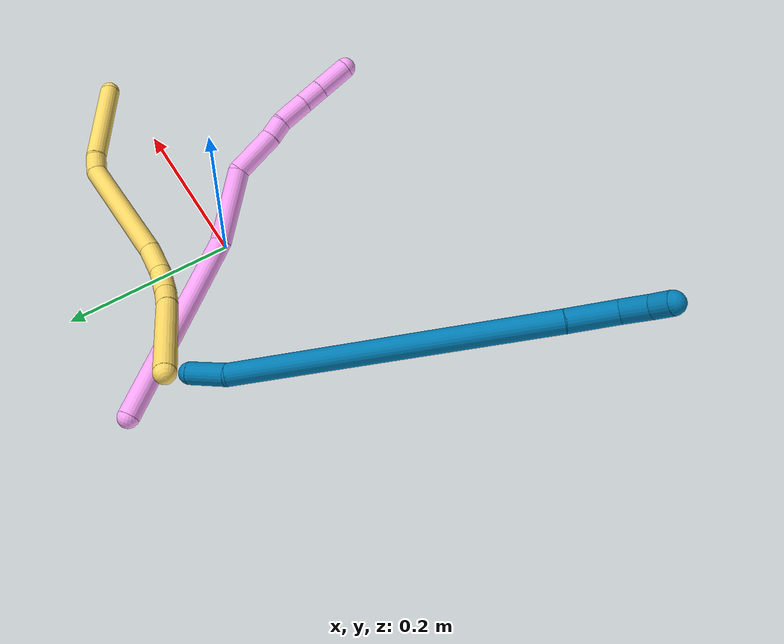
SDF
<sdf version="1.7">
 <world name="default">
  <model name="photoneo_s_sensor">
   <static>1</static>
   <pose>0 0 2 1.57079 1.57079 3.14159</pose>
   <link name="link">
    <inertial><mass>0.1</mass></inertial>
    <sensor name="sensor" type="depth">
     <update_rate>30</update_rate>
     <camera>
      <horizontal_fov>1.22</horizontal_fov>
      <image><width>1920</width><height>1200</height><format>B8G8R8</format></image>
      <clip><near>0.1</near><far>2</far></clip>
      <depth_camera><output>points</output></depth_camera>
     </camera>
     <plugin name="camera_plugin" filename="libgazebo_ros_depth_camera.so">
      <baseline>0.2</baseline>
      <alwaysOn>1</alwaysOn>
      <updateRate>0.0</updateRate>
      <cameraName>camera_ir</cameraName>
      <imageTopicName>/camera/color/image_raw</imageTopicName>
      <cameraInfoTopicName>/camera/color/camera_info</cameraInfoTopicName>
      <depthImageTopicName>/camera/depth/image_raw</depthImageTopicName>
      <depthImageCameraInfoTopicName>/camera/depth/camera_info</depthImageCameraInfoTopicName>
      <pointCloudTopicName>/camera/depth/points</pointCloudTopicName>
      <frameName>fr_optical</frameName>
      <pointCloudCutoff>0.1</pointCloudCutoff>
      <pointCloudCutoffMax>2.0</pointCloudCutoffMax>
      <distortionK1>0</distortionK1>
      <distortionK2>0</distortionK2>
      <distortionK3>0</distortionK3>
      <distortionT1>0</distortionT1>
      <distortionT2>0</distortionT2>
      <CxPrime>0</CxPrime>
      <Cx>0</Cx>
      <Cy>0</Cy>
      <focalLength>0</focalLength>
      <hackBaseline>0</hackBaseline>
     </plugin>
    </sensor>
   </link>
  </model>
  <model name="bin">
   <static>1</static>
   <link name="bottom">
    <collision name="collision-bottom">
     <pose>0 0 -0.01 0 -0 0</pose>
     <geometry><box><size>0.8 0.6 0.02</size></box></geometry>
     <surface>
      <friction><ode><mu>100</mu><mu2>100</mu2></ode></friction>
      <contact><collide_bitmask>65535</collide_bitmask></contact>
     </surface>
    </collision>
   </link>
   <link name="west_wall">
    <collision name="collision-west_wall">
     <pose>-0.41 0 0.1 0 -0 0</pose>
     <geometry><box><size>0.02 0.6 0.2</size></box></geometry>
     <surface>
      <friction><ode><mu>100</mu><mu2>100</mu2></ode></friction>
      <contact><collide_bitmask>65535</collide_bitmask></contact>
     </surface>
    </collision>
   </link>
   <link name="east_wall">
    <collision name="collision-east_wall">
     <pose>0.41 0 0.1 0 -0 0</pose>
     <geometry><box><size>0.02 0.6 0.2</size></box></geometry>
     <surface>
      <friction><ode><mu>100</mu><mu2>100</mu2></ode></friction>
      <contact><collide_bitmask>65535</collide_bitmask></contact>
     </surface>
    </collision>
   </link>
   <link name="south_wall">
    <collision name="collision-south_wall">
     <pose>0 -0.31 0.1 0 -0 0</pose>
     <geometry><box><size>0.8 0.02 0.2</size></box></geometry>
     <surface>
      <friction><ode><mu>100</mu><mu2>100</mu2></ode></friction>
      <contact><collide_bitmask>65535</collide_bitmask></contact>
     </surface>
    </collision>
   </link>
   <link name="north_wall">
    <collision name="collision-north_wall">
     <pose>0 0.31 0.1 0 -0 0</pose>
     <geometry><box><size>0.8 0.02 0.2</size></box></geometry>
     <surface>
      <friction><ode><mu>100</mu><mu2>100</mu2></ode></friction>
      <contact><collide_bitmask>65535</collide_bitmask></contact>
     </surface>
    </collision>
   </link>
  </model>
  <model name="4">
   <static>0</static>
   <link name="4">
    <collision name="collision-cylinder-e_1_1_4">
     <pose>0.027207 -0.07996 -0.07725 2.33896 0.239992 0.553694</pose>
     <geometry><cylinder><radius>0.0125</radius><length>0.228923</length></cylinder></geometry>
     <surface>
      <friction><ode><mu>1.16</mu><mu2>1.16</mu2><slip1>0</slip1><slip2>0</slip2></ode></friction>
      <contact><ode><kp>1e+06</kp><kd>1</kd><max_vel>0</max_vel><min_depth>0.001</min_depth></ode></contact>
     </surface>
    </collision>
    <visual name="visual-cylinder-e_1_1_4">
     <pose>0.027207 -0.07996 -0.07725 2.33896 0.239992 0.553694</pose>
     <geometry><cylinder><radius>0.0125</radius><length>0.228923</length></cylinder></geometry>
     <material><ambient>1 0.65098 0.996078 1</ambient></material>
    </visual>
    <collision name="collision-cylinder-e_2_4_5">
     <pose>0.054866 -0.182045 -0.192675 2.61633 0.010249 0.038118</pose>
     <geometry><cylinder><radius>0.0125</radius><length>0.088249</length></cylinder></geometry>
     <surface>
      <friction><ode><mu>1.16</mu><mu2>1.16</mu2><slip1>0</slip1><slip2>0</slip2></ode></friction>
      <contact><ode><kp>1e+06</kp><kd>1</kd><max_vel>0</max_vel><min_depth>0.001</min_depth></ode></contact>
     </surface>
    </collision>
    <visual name="visual-cylinder-e_2_4_5">
     <pose>0.054866 -0.182045 -0.192675 2.61633 0.010249 0.038118</pose>
     <geometry><cylinder><radius>0.0125</radius><length>0.088249</length></cylinder></geometry>
     <material><ambient>1 0.65098 0.996078 1</ambient></material>
    </visual>
    <collision name="collision-cylinder-e_3_5_6">
     <pose>0.069196 -0.216458 -0.252445 2.62424 0.509358 1.55452</pose>
     <geometry><cylinder><radius>0.0125</radius><length>0.05692</length></cylinder></geometry>
     <surface>
      <friction><ode><mu>1.16</mu><mu2>1.16</mu2><slip1>0</slip1><slip2>0</slip2></ode></friction>
      <contact><ode><kp>1e+06</kp><kd>1</kd><max_vel>0</max_vel><min_depth>0.001</min_depth></ode></contact>
     </surface>
    </collision>
    <visual name="visual-cylinder-e_3_5_6">
     <pose>0.069196 -0.216458 -0.252445 2.62424 0.509358 1.55452</pose>
     <geometry><cylinder><radius>0.0125</radius><length>0.05692</length></cylinder></geometry>
     <material><ambient>1 0.65098 0.996078 1</ambient></material>
    </visual>
    <collision name="collision-cylinder-e_4_6_7">
     <pose>0.086972 -0.233566 -0.283344 2.66375 0.356252 1.27302</pose>
     <geometry><cylinder><radius>0.0125</radius><length>0.022359</length></cylinder></geometry>
     <surface>
      <friction><ode><mu>1.16</mu><mu2>1.16</mu2><slip1>0</slip1><slip2>0</slip2></ode></friction>
      <contact><ode><kp>1e+06</kp><kd>1</kd><max_vel>0</max_vel><min_depth>0.001</min_depth></ode></contact>
     </surface>
    </collision>
    <visual name="visual-cylinder-e_4_6_7">
     <pose>0.086972 -0.233566 -0.283344 2.66375 0.356252 1.27302</pose>
     <geometry><cylinder><radius>0.0125</radius><length>0.022359</length></cylinder></geometry>
     <material><ambient>1 0.65098 0.996078 1</ambient></material>
    </visual>
    <collision name="collision-cylinder-e_5_7_8">
     <pose>0.10137 -0.245706 -0.305769 2.6326 0.609876 1.76024</pose>
     <geometry><cylinder><radius>0.0125</radius><length>0.036661</length></cylinder></geometry>
     <surface>
      <friction><ode><mu>1.16</mu><mu2>1.16</mu2><slip1>0</slip1><slip2>0</slip2></ode></friction>
      <contact><ode><kp>1e+06</kp><kd>1</kd><max_vel>0</max_vel><min_depth>0.001</min_depth></ode></contact>
     </surface>
    </collision>
    <visual name="visual-cylinder-e_5_7_8">
     <pose>0.10137 -0.245706 -0.305769 2.6326 0.609876 1.76024</pose>
     <geometry><cylinder><radius>0.0125</radius><length>0.036661</length></cylinder></geometry>
     <material><ambient>1 0.65098 0.996078 1</ambient></material>
    </visual>
    <collision name="collision-cylinder-e_6_8_9">
     <pose>0.119527 -0.257112 -0.328953 2.75611 0.614139 2.03817</pose>
     <geometry><cylinder><radius>0.0125</radius><length>0.026576</length></cylinder></geometry>
     <surface>
      <friction><ode><mu>1.16</mu><mu2>1.16</mu2><slip1>0</slip1><slip2>0</slip2></ode></friction>
      <contact><ode><kp>1e+06</kp><kd>1</kd><max_vel>0</max_vel><min_depth>0.001</min_depth></ode></contact>
     </surface>
    </collision>
    <visual name="visual-cylinder-e_6_8_9">
     <pose>0.119527 -0.257112 -0.328953 2.75611 0.614139 2.03817</pose>
     <geometry><cylinder><radius>0.0125</radius><length>0.026576</length></cylinder></geometry>
     <material><ambient>1 0.65098 0.996078 1</ambient></material>
    </visual>
    <collision name="collision-cylinder-e_7_9_2">
     <pose>0.138822 -0.267394 -0.354261 2.75536 0.615512 2.0385</pose>
     <geometry><cylinder><radius>0.0125</radius><length>0.040312</length></cylinder></geometry>
     <surface>
      <friction><ode><mu>1.16</mu><mu2>1.16</mu2><slip1>0</slip1><slip2>0</slip2></ode></friction>
      <contact><ode><kp>1e+06</kp><kd>1</kd><max_vel>0</max_vel><min_depth>0.001</min_depth></ode></contact>
     </surface>
    </collision>
    <visual name="visual-cylinder-e_7_9_2">
     <pose>0.138822 -0.267394 -0.354261 2.75536 0.615512 2.0385</pose>
     <geometry><cylinder><radius>0.0125</radius><length>0.040312</length></cylinder></geometry>
     <material><ambient>1 0.65098 0.996078 1</ambient></material>
    </visual>
    <collision name="collision-sphere-2">
     <pose>0.150459 -0.273594 -0.369505 0 -0 0</pose>
     <geometry><sphere><radius>0.0125</radius></sphere></geometry>
     <surface>
      <friction><ode><mu>1.16</mu><mu2>1.16</mu2><slip1>0</slip1><slip2>0</slip2></ode></friction>
      <contact><ode><kp>1e+06</kp><kd>1</kd><max_vel>0</max_vel><min_depth>0.001</min_depth></ode></contact>
     </surface>
    </collision>
    <visual name="visual-sphere-2">
     <pose>0.150459 -0.273594 -0.369505 0 -0 0</pose>
     <geometry><sphere><radius>0.0125</radius></sphere></geometry>
     <material><ambient>1 0.65098 0.996078 1</ambient></material>
    </visual>
    <collision name="collision-sphere-9">
     <pose>0.127184 -0.261195 -0.339016 0 -0 0</pose>
     <geometry><sphere><radius>0.0125</radius></sphere></geometry>
     <surface>
      <friction><ode><mu>1.16</mu><mu2>1.16</mu2><slip1>0</slip1><slip2>0</slip2></ode></friction>
      <contact><ode><kp>1e+06</kp><kd>1</kd><max_vel>0</max_vel><min_depth>0.001</min_depth></ode></contact>
     </surface>
    </collision>
    <visual name="visual-sphere-9">
     <pose>0.127184 -0.261195 -0.339016 0 -0 0</pose>
     <geometry><sphere><radius>0.0125</radius></sphere></geometry>
     <material><ambient>1 0.65098 0.996078 1</ambient></material>
    </visual>
    <collision name="collision-sphere-4">
     <pose>0.054414 -0.15992 -0.154501 0 -0 0</pose>
     <geometry><sphere><radius>0.0125</radius></sphere></geometry>
     <surface>
      <friction><ode><mu>1.16</mu><mu2>1.16</mu2><slip1>0</slip1><slip2>0</slip2></ode></friction>
      <contact><ode><kp>1e+06</kp><kd>1</kd><max_vel>0</max_vel><min_depth>0.001</min_depth></ode></contact>
     </surface>
    </collision>
    <visual name="visual-sphere-4">
     <pose>0.054414 -0.15992 -0.154501 0 -0 0</pose>
     <geometry><sphere><radius>0.0125</radius></sphere></geometry>
     <material><ambient>1 0.65098 0.996078 1</ambient></material>
    </visual>
    <collision name="collision-sphere-1">
     <geometry><sphere><radius>0.0125</radius></sphere></geometry>
     <surface>
      <friction><ode><mu>1.16</mu><mu2>1.16</mu2><slip1>0</slip1><slip2>0</slip2></ode></friction>
      <contact><ode><kp>1e+06</kp><kd>1</kd><max_vel>0</max_vel><min_depth>0.001</min_depth></ode></contact>
     </surface>
    </collision>
    <visual name="visual-sphere-1">
     <geometry><sphere><radius>0.0125</radius></sphere></geometry>
     <material><ambient>1 0.65098 0.996078 1</ambient></material>
    </visual>
    <collision name="collision-sphere-8">
     <pose>0.11187 -0.253028 -0.31889 0 -0 0</pose>
     <geometry><sphere><radius>0.0125</radius></sphere></geometry>
     <surface>
      <friction><ode><mu>1.16</mu><mu2>1.16</mu2><slip1>0</slip1><slip2>0</slip2></ode></friction>
      <contact><ode><kp>1e+06</kp><kd>1</kd><max_vel>0</max_vel><min_depth>0.001</min_depth></ode></contact>
     </surface>
    </collision>
    <visual name="visual-sphere-8">
     <pose>0.11187 -0.253028 -0.31889 0 -0 0</pose>
     <geometry><sphere><radius>0.0125</radius></sphere></geometry>
     <material><ambient>1 0.65098 0.996078 1</ambient></material>
    </visual>
    <collision name="collision-sphere-5">
     <pose>0.055318 -0.204169 -0.230849 0 -0 0</pose>
     <geometry><sphere><radius>0.0125</radius></sphere></geometry>
     <surface>
      <friction><ode><mu>1.16</mu><mu2>1.16</mu2><slip1>0</slip1><slip2>0</slip2></ode></friction>
      <contact><ode><kp>1e+06</kp><kd>1</kd><max_vel>0</max_vel><min_depth>0.001</min_depth></ode></contact>
     </surface>
    </collision>
    <visual name="visual-sphere-5">
     <pose>0.055318 -0.204169 -0.230849 0 -0 0</pose>
     <geometry><sphere><radius>0.0125</radius></sphere></geometry>
     <material><ambient>1 0.65098 0.996078 1</ambient></material>
    </visual>
    <collision name="collision-sphere-6">
     <pose>0.083073 -0.228747 -0.27404 0 -0 0</pose>
     <geometry><sphere><radius>0.0125</radius></sphere></geometry>
     <surface>
      <friction><ode><mu>1.16</mu><mu2>1.16</mu2><slip1>0</slip1><slip2>0</slip2></ode></friction>
      <contact><ode><kp>1e+06</kp><kd>1</kd><max_vel>0</max_vel><min_depth>0.001</min_depth></ode></contact>
     </surface>
    </collision>
    <visual name="visual-sphere-6">
     <pose>0.083073 -0.228747 -0.27404 0 -0 0</pose>
     <geometry><sphere><radius>0.0125</radius></sphere></geometry>
     <material><ambient>1 0.65098 0.996078 1</ambient></material>
    </visual>
    <collision name="collision-sphere-7">
     <pose>0.090871 -0.238384 -0.292648 0 -0 0</pose>
     <geometry><sphere><radius>0.0125</radius></sphere></geometry>
     <surface>
      <friction><ode><mu>1.16</mu><mu2>1.16</mu2><slip1>0</slip1><slip2>0</slip2></ode></friction>
      <contact><ode><kp>1e+06</kp><kd>1</kd><max_vel>0</max_vel><min_depth>0.001</min_depth></ode></contact>
     </surface>
    </collision>
    <visual name="visual-sphere-7">
     <pose>0.090871 -0.238384 -0.292648 0 -0 0</pose>
     <geometry><sphere><radius>0.0125</radius></sphere></geometry>
     <material><ambient>1 0.65098 0.996078 1</ambient></material>
    </visual>
    <inertial>
     <pose>0.058885 -0.157066 -0.17925 0 -0 0</pose>
     <mass>0.5</mass>
     <inertia>
      <ixx>0.001448</ixx>
      <ixy>0</ixy>
      <ixz>0</ixz>
      <iyy>-2.1e-05</iyy>
      <iyz>0</iyz>
      <izz>0.000461</izz>
     </inertia>
    </inertial>
   </link>
   <pose>-0.147749 0.19283 0.012427 2.53328 0.263541 -2.2297</pose>
  </model>
  <model name="5">
   <static>0</static>
   <link name="5">
    <collision name="collision-cylinder-e_1_1_4">
     <pose>-0.008868 -0.002865 0.055325 0.051746 -0.158736 -0.004117</pose>
     <geometry><cylinder><radius>0.0125</radius><length>0.112209</length></cylinder></geometry>
     <surface>
      <friction><ode><mu>1.16</mu><mu2>1.16</mu2><slip1>0</slip1><slip2>0</slip2></ode></friction>
      <contact><ode><kp>1e+06</kp><kd>1</kd><max_vel>0</max_vel><min_depth>0.001</min_depth></ode></contact>
     </surface>
    </collision>
    <visual name="visual-cylinder-e_1_1_4">
     <pose>-0.008868 -0.002865 0.055325 0.051746 -0.158736 -0.004117</pose>
     <geometry><cylinder><radius>0.0125</radius><length>0.112209</length></cylinder></geometry>
     <material><ambient>1 0.858824 0.4 1</ambient></material>
    </visual>
    <collision name="collision-cylinder-e_2_4_5">
     <pose>-0.018724 -0.005896 0.123958 0.012412 -0.074029 -0.00046</pose>
     <geometry><cylinder><radius>0.0125</radius><length>0.026692</length></cylinder></geometry>
     <surface>
      <friction><ode><mu>1.16</mu><mu2>1.16</mu2><slip1>0</slip1><slip2>0</slip2></ode></friction>
      <contact><ode><kp>1e+06</kp><kd>1</kd><max_vel>0</max_vel><min_depth>0.001</min_depth></ode></contact>
     </surface>
    </collision>
    <visual name="visual-cylinder-e_2_4_5">
     <pose>-0.018724 -0.005896 0.123958 0.012412 -0.074029 -0.00046</pose>
     <geometry><cylinder><radius>0.0125</radius><length>0.026692</length></cylinder></geometry>
     <material><ambient>1 0.858824 0.4 1</ambient></material>
    </visual>
    <collision name="collision-cylinder-e_3_5_6">
     <pose>-0.021968 -0.003405 0.156272 -0.138878 -0.117092 0.008153</pose>
     <geometry><cylinder><radius>0.0125</radius><length>0.038644</length></cylinder></geometry>
     <surface>
      <friction><ode><mu>1.16</mu><mu2>1.16</mu2><slip1>0</slip1><slip2>0</slip2></ode></friction>
      <contact><ode><kp>1e+06</kp><kd>1</kd><max_vel>0</max_vel><min_depth>0.001</min_depth></ode></contact>
     </surface>
    </collision>
    <visual name="visual-cylinder-e_3_5_6">
     <pose>-0.021968 -0.003405 0.156272 -0.138878 -0.117092 0.008153</pose>
     <geometry><cylinder><radius>0.0125</radius><length>0.038644</length></cylinder></geometry>
     <material><ambient>1 0.858824 0.4 1</ambient></material>
    </visual>
    <collision name="collision-cylinder-e_4_6_7">
     <pose>-0.027115 0.006275 0.192315 -0.391013 -0.155534 0.030861</pose>
     <geometry><cylinder><radius>0.0125</radius><length>0.037308</length></cylinder></geometry>
     <surface>
      <friction><ode><mu>1.16</mu><mu2>1.16</mu2><slip1>0</slip1><slip2>0</slip2></ode></friction>
      <contact><ode><kp>1e+06</kp><kd>1</kd><max_vel>0</max_vel><min_depth>0.001</min_depth></ode></contact>
     </surface>
    </collision>
    <visual name="visual-cylinder-e_4_6_7">
     <pose>-0.027115 0.006275 0.192315 -0.391013 -0.155534 0.030861</pose>
     <geometry><cylinder><radius>0.0125</radius><length>0.037308</length></cylinder></geometry>
     <material><ambient>1 0.858824 0.4 1</ambient></material>
    </visual>
    <collision name="collision-cylinder-e_5_7_8">
     <pose>-0.036371 0.049581 0.273132 -0.517214 -0.08654 0.022906</pose>
     <geometry><cylinder><radius>0.0125</radius><length>0.147304</length></cylinder></geometry>
     <surface>
      <friction><ode><mu>1.16</mu><mu2>1.16</mu2><slip1>0</slip1><slip2>0</slip2></ode></friction>
      <contact><ode><kp>1e+06</kp><kd>1</kd><max_vel>0</max_vel><min_depth>0.001</min_depth></ode></contact>
     </surface>
    </collision>
    <visual name="visual-cylinder-e_5_7_8">
     <pose>-0.036371 0.049581 0.273132 -0.517214 -0.08654 0.022906</pose>
     <geometry><cylinder><radius>0.0125</radius><length>0.147304</length></cylinder></geometry>
     <material><ambient>1 0.858824 0.4 1</ambient></material>
    </visual>
    <collision name="collision-cylinder-e_6_8_9">
     <pose>-0.04881 0.089289 0.345944 -0.362541 -0.561181 0.105544</pose>
     <geometry><cylinder><radius>0.0125</radius><length>0.022824</length></cylinder></geometry>
     <surface>
      <friction><ode><mu>1.16</mu><mu2>1.16</mu2><slip1>0</slip1><slip2>0</slip2></ode></friction>
      <contact><ode><kp>1e+06</kp><kd>1</kd><max_vel>0</max_vel><min_depth>0.001</min_depth></ode></contact>
     </surface>
    </collision>
    <visual name="visual-cylinder-e_6_8_9">
     <pose>-0.04881 0.089289 0.345944 -0.362541 -0.561181 0.105544</pose>
     <geometry><cylinder><radius>0.0125</radius><length>0.022824</length></cylinder></geometry>
     <material><ambient>1 0.858824 0.4 1</ambient></material>
    </visual>
    <collision name="collision-cylinder-e_7_9_2">
     <pose>-0.08439 0.097301 0.404127 -0.093025 -0.538773 0.025701</pose>
     <geometry><cylinder><radius>0.0125</radius><length>0.115018</length></cylinder></geometry>
     <surface>
      <friction><ode><mu>1.16</mu><mu2>1.16</mu2><slip1>0</slip1><slip2>0</slip2></ode></friction>
      <contact><ode><kp>1e+06</kp><kd>1</kd><max_vel>0</max_vel><min_depth>0.001</min_depth></ode></contact>
     </surface>
    </collision>
    <visual name="visual-cylinder-e_7_9_2">
     <pose>-0.08439 0.097301 0.404127 -0.093025 -0.538773 0.025701</pose>
     <geometry><cylinder><radius>0.0125</radius><length>0.115018</length></cylinder></geometry>
     <material><ambient>1 0.858824 0.4 1</ambient></material>
    </visual>
    <collision name="collision-sphere-2">
     <pose>-0.113897 0.101887 0.453276 0 -0 0</pose>
     <geometry><sphere><radius>0.0125</radius></sphere></geometry>
     <surface>
      <friction><ode><mu>1.16</mu><mu2>1.16</mu2><slip1>0</slip1><slip2>0</slip2></ode></friction>
      <contact><ode><kp>1e+06</kp><kd>1</kd><max_vel>0</max_vel><min_depth>0.001</min_depth></ode></contact>
     </surface>
    </collision>
    <visual name="visual-sphere-2">
     <pose>-0.113897 0.101887 0.453276 0 -0 0</pose>
     <geometry><sphere><radius>0.0125</radius></sphere></geometry>
     <material><ambient>1 0.858824 0.4 1</ambient></material>
    </visual>
    <collision name="collision-sphere-9">
     <pose>-0.054883 0.092716 0.354978 0 -0 0</pose>
     <geometry><sphere><radius>0.0125</radius></sphere></geometry>
     <surface>
      <friction><ode><mu>1.16</mu><mu2>1.16</mu2><slip1>0</slip1><slip2>0</slip2></ode></friction>
      <contact><ode><kp>1e+06</kp><kd>1</kd><max_vel>0</max_vel><min_depth>0.001</min_depth></ode></contact>
     </surface>
    </collision>
    <visual name="visual-sphere-9">
     <pose>-0.054883 0.092716 0.354978 0 -0 0</pose>
     <geometry><sphere><radius>0.0125</radius></sphere></geometry>
     <material><ambient>1 0.858824 0.4 1</ambient></material>
    </visual>
    <collision name="collision-sphere-4">
     <pose>-0.017737 -0.005731 0.11065 0 -0 0</pose>
     <geometry><sphere><radius>0.0125</radius></sphere></geometry>
     <surface>
      <friction><ode><mu>1.16</mu><mu2>1.16</mu2><slip1>0</slip1><slip2>0</slip2></ode></friction>
      <contact><ode><kp>1e+06</kp><kd>1</kd><max_vel>0</max_vel><min_depth>0.001</min_depth></ode></contact>
     </surface>
    </collision>
    <visual name="visual-sphere-4">
     <pose>-0.017737 -0.005731 0.11065 0 -0 0</pose>
     <geometry><sphere><radius>0.0125</radius></sphere></geometry>
     <material><ambient>1 0.858824 0.4 1</ambient></material>
    </visual>
    <collision name="collision-sphere-1">
     <geometry><sphere><radius>0.0125</radius></sphere></geometry>
     <surface>
      <friction><ode><mu>1.16</mu><mu2>1.16</mu2><slip1>0</slip1><slip2>0</slip2></ode></friction>
      <contact><ode><kp>1e+06</kp><kd>1</kd><max_vel>0</max_vel><min_depth>0.001</min_depth></ode></contact>
     </surface>
    </collision>
    <visual name="visual-sphere-1">
     <geometry><sphere><radius>0.0125</radius></sphere></geometry>
     <material><ambient>1 0.858824 0.4 1</ambient></material>
    </visual>
    <collision name="collision-sphere-8">
     <pose>-0.042737 0.085863 0.336911 0 -0 0</pose>
     <geometry><sphere><radius>0.0125</radius></sphere></geometry>
     <surface>
      <friction><ode><mu>1.16</mu><mu2>1.16</mu2><slip1>0</slip1><slip2>0</slip2></ode></friction>
      <contact><ode><kp>1e+06</kp><kd>1</kd><max_vel>0</max_vel><min_depth>0.001</min_depth></ode></contact>
     </surface>
    </collision>
    <visual name="visual-sphere-8">
     <pose>-0.042737 0.085863 0.336911 0 -0 0</pose>
     <geometry><sphere><radius>0.0125</radius></sphere></geometry>
     <material><ambient>1 0.858824 0.4 1</ambient></material>
    </visual>
    <collision name="collision-sphere-5">
     <pose>-0.019711 -0.006061 0.137267 0 -0 0</pose>
     <geometry><sphere><radius>0.0125</radius></sphere></geometry>
     <surface>
      <friction><ode><mu>1.16</mu><mu2>1.16</mu2><slip1>0</slip1><slip2>0</slip2></ode></friction>
      <contact><ode><kp>1e+06</kp><kd>1</kd><max_vel>0</max_vel><min_depth>0.001</min_depth></ode></contact>
     </surface>
    </collision>
    <visual name="visual-sphere-5">
     <pose>-0.019711 -0.006061 0.137267 0 -0 0</pose>
     <geometry><sphere><radius>0.0125</radius></sphere></geometry>
     <material><ambient>1 0.858824 0.4 1</ambient></material>
    </visual>
    <collision name="collision-sphere-6">
     <pose>-0.024226 -0.000748 0.175277 0 -0 0</pose>
     <geometry><sphere><radius>0.0125</radius></sphere></geometry>
     <surface>
      <friction><ode><mu>1.16</mu><mu2>1.16</mu2><slip1>0</slip1><slip2>0</slip2></ode></friction>
      <contact><ode><kp>1e+06</kp><kd>1</kd><max_vel>0</max_vel><min_depth>0.001</min_depth></ode></contact>
     </surface>
    </collision>
    <visual name="visual-sphere-6">
     <pose>-0.024226 -0.000748 0.175277 0 -0 0</pose>
     <geometry><sphere><radius>0.0125</radius></sphere></geometry>
     <material><ambient>1 0.858824 0.4 1</ambient></material>
    </visual>
    <collision name="collision-sphere-7">
     <pose>-0.030005 0.013299 0.209353 0 -0 0</pose>
     <geometry><sphere><radius>0.0125</radius></sphere></geometry>
     <surface>
      <friction><ode><mu>1.16</mu><mu2>1.16</mu2><slip1>0</slip1><slip2>0</slip2></ode></friction>
      <contact><ode><kp>1e+06</kp><kd>1</kd><max_vel>0</max_vel><min_depth>0.001</min_depth></ode></contact>
     </surface>
    </collision>
    <visual name="visual-sphere-7">
     <pose>-0.030005 0.013299 0.209353 0 -0 0</pose>
     <geometry><sphere><radius>0.0125</radius></sphere></geometry>
     <material><ambient>1 0.858824 0.4 1</ambient></material>
    </visual>
    <inertial>
     <pose>-0.039067 0.040313 0.234684 0 -0 0</pose>
     <mass>0.5</mass>
     <inertia><ixx>0.000521</ixx><ixy>0</ixy><ixz>0</ixz><iyy>0.000523</iyy><iyz>0</iyz><izz>7e-06</izz></inertia>
    </inertial>
   </link>
   <pose>-0.159537 0.144253 0.087872 2.21422 0.684282 1.75921</pose>
  </model>
  <model name="9">
   <static>0</static>
   <link name="9">
    <collision name="collision-cylinder-e_1_1_4">
     <pose>-0.009622 -0.009849 0.018646 0.485966 -0.428054 -0.107653</pose>
     <geometry><cylinder><radius>0.0125</radius><length>0.046358</length></cylinder></geometry>
     <surface>
      <friction><ode><mu>1.16</mu><mu2>1.16</mu2><slip1>0</slip1><slip2>0</slip2></ode></friction>
      <contact><ode><kp>1e+06</kp><kd>1</kd><max_vel>0</max_vel><min_depth>0.001</min_depth></ode></contact>
     </surface>
    </collision>
    <visual name="visual-cylinder-e_1_1_4">
     <pose>-0.009622 -0.009849 0.018646 0.485966 -0.428054 -0.107653</pose>
     <geometry><cylinder><radius>0.0125</radius><length>0.046358</length></cylinder></geometry>
     <material><ambient>0 0.490196 0.709804 1</ambient></material>
    </visual>
    <collision name="collision-cylinder-e_2_4_5">
     <pose>-0.080364 -0.134467 0.153447 0.779396 -0.358162 -0.148418</pose>
     <geometry><cylinder><radius>0.0125</radius><length>0.348709</length></cylinder></geometry>
     <surface>
      <friction><ode><mu>1.16</mu><mu2>1.16</mu2><slip1>0</slip1><slip2>0</slip2></ode></friction>
      <contact><ode><kp>1e+06</kp><kd>1</kd><max_vel>0</max_vel><min_depth>0.001</min_depth></ode></contact>
     </surface>
    </collision>
    <visual name="visual-cylinder-e_2_4_5">
     <pose>-0.080364 -0.134467 0.153447 0.779396 -0.358162 -0.148418</pose>
     <geometry><cylinder><radius>0.0125</radius><length>0.348709</length></cylinder></geometry>
     <material><ambient>0 0.490196 0.709804 1</ambient></material>
    </visual>
    <collision name="collision-cylinder-e_3_5_6">
     <pose>-0.151222 -0.268081 0.285729 0.862963 -0.374095 -0.173837</pose>
     <geometry><cylinder><radius>0.0125</radius><length>0.053294</length></cylinder></geometry>
     <surface>
      <friction><ode><mu>1.16</mu><mu2>1.16</mu2><slip1>0</slip1><slip2>0</slip2></ode></friction>
      <contact><ode><kp>1e+06</kp><kd>1</kd><max_vel>0</max_vel><min_depth>0.001</min_depth></ode></contact>
     </surface>
    </collision>
    <visual name="visual-cylinder-e_3_5_6">
     <pose>-0.151222 -0.268081 0.285729 0.862963 -0.374095 -0.173837</pose>
     <geometry><cylinder><radius>0.0125</radius><length>0.053294</length></cylinder></geometry>
     <material><ambient>0 0.490196 0.709804 1</ambient></material>
    </visual>
    <collision name="collision-cylinder-e_4_6_7">
     <pose>-0.163624 -0.292445 0.316439 0.361792 -0.169225 -0.031022</pose>
     <geometry><cylinder><radius>0.0125</radius><length>0.031636</length></cylinder></geometry>
     <surface>
      <friction><ode><mu>1.16</mu><mu2>1.16</mu2><slip1>0</slip1><slip2>0</slip2></ode></friction>
      <contact><ode><kp>1e+06</kp><kd>1</kd><max_vel>0</max_vel><min_depth>0.001</min_depth></ode></contact>
     </surface>
    </collision>
    <visual name="visual-cylinder-e_4_6_7">
     <pose>-0.163624 -0.292445 0.316439 0.361792 -0.169225 -0.031022</pose>
     <geometry><cylinder><radius>0.0125</radius><length>0.031636</length></cylinder></geometry>
     <material><ambient>0 0.490196 0.709804 1</ambient></material>
    </visual>
    <collision name="collision-cylinder-e_5_7_2">
     <pose>-0.167226 -0.30058 0.34063 0.265779 -0.093985 -0.012573</pose>
     <geometry><cylinder><radius>0.0125</radius><length>0.020003</length></cylinder></geometry>
     <surface>
      <friction><ode><mu>1.16</mu><mu2>1.16</mu2><slip1>0</slip1><slip2>0</slip2></ode></friction>
      <contact><ode><kp>1e+06</kp><kd>1</kd><max_vel>0</max_vel><min_depth>0.001</min_depth></ode></contact>
     </surface>
    </collision>
    <visual name="visual-cylinder-e_5_7_2">
     <pose>-0.167226 -0.30058 0.34063 0.265779 -0.093985 -0.012573</pose>
     <geometry><cylinder><radius>0.0125</radius><length>0.020003</length></cylinder></geometry>
     <material><ambient>0 0.490196 0.709804 1</ambient></material>
    </visual>
    <collision name="collision-sphere-2">
     <pose>-0.168165 -0.303195 0.350237 0 -0 0</pose>
     <geometry><sphere><radius>0.0125</radius></sphere></geometry>
     <surface>
      <friction><ode><mu>1.16</mu><mu2>1.16</mu2><slip1>0</slip1><slip2>0</slip2></ode></friction>
      <contact><ode><kp>1e+06</kp><kd>1</kd><max_vel>0</max_vel><min_depth>0.001</min_depth></ode></contact>
     </surface>
    </collision>
    <visual name="visual-sphere-2">
     <pose>-0.168165 -0.303195 0.350237 0 -0 0</pose>
     <geometry><sphere><radius>0.0125</radius></sphere></geometry>
     <material><ambient>0 0.490196 0.709804 1</ambient></material>
    </visual>
    <collision name="collision-sphere-7">
     <pose>-0.166288 -0.297964 0.331022 0 -0 0</pose>
     <geometry><sphere><radius>0.0125</radius></sphere></geometry>
     <surface>
      <friction><ode><mu>1.16</mu><mu2>1.16</mu2><slip1>0</slip1><slip2>0</slip2></ode></friction>
      <contact><ode><kp>1e+06</kp><kd>1</kd><max_vel>0</max_vel><min_depth>0.001</min_depth></ode></contact>
     </surface>
    </collision>
    <visual name="visual-sphere-7">
     <pose>-0.166288 -0.297964 0.331022 0 -0 0</pose>
     <geometry><sphere><radius>0.0125</radius></sphere></geometry>
     <material><ambient>0 0.490196 0.709804 1</ambient></material>
    </visual>
    <collision name="collision-sphere-6">
     <pose>-0.16096 -0.286927 0.301856 0 -0 0</pose>
     <geometry><sphere><radius>0.0125</radius></sphere></geometry>
     <surface>
      <friction><ode><mu>1.16</mu><mu2>1.16</mu2><slip1>0</slip1><slip2>0</slip2></ode></friction>
      <contact><ode><kp>1e+06</kp><kd>1</kd><max_vel>0</max_vel><min_depth>0.001</min_depth></ode></contact>
     </surface>
    </collision>
    <visual name="visual-sphere-6">
     <pose>-0.16096 -0.286927 0.301856 0 -0 0</pose>
     <geometry><sphere><radius>0.0125</radius></sphere></geometry>
     <material><ambient>0 0.490196 0.709804 1</ambient></material>
    </visual>
    <collision name="collision-sphere-5">
     <pose>-0.141484 -0.249236 0.269602 0 -0 0</pose>
     <geometry><sphere><radius>0.0125</radius></sphere></geometry>
     <surface>
      <friction><ode><mu>1.16</mu><mu2>1.16</mu2><slip1>0</slip1><slip2>0</slip2></ode></friction>
      <contact><ode><kp>1e+06</kp><kd>1</kd><max_vel>0</max_vel><min_depth>0.001</min_depth></ode></contact>
     </surface>
    </collision>
    <visual name="visual-sphere-5">
     <pose>-0.141484 -0.249236 0.269602 0 -0 0</pose>
     <geometry><sphere><radius>0.0125</radius></sphere></geometry>
     <material><ambient>0 0.490196 0.709804 1</ambient></material>
    </visual>
    <collision name="collision-sphere-1">
     <geometry><sphere><radius>0.0125</radius></sphere></geometry>
     <surface>
      <friction><ode><mu>1.16</mu><mu2>1.16</mu2><slip1>0</slip1><slip2>0</slip2></ode></friction>
      <contact><ode><kp>1e+06</kp><kd>1</kd><max_vel>0</max_vel><min_depth>0.001</min_depth></ode></contact>
     </surface>
    </collision>
    <visual name="visual-sphere-1">
     <geometry><sphere><radius>0.0125</radius></sphere></geometry>
     <material><ambient>0 0.490196 0.709804 1</ambient></material>
    </visual>
    <collision name="collision-sphere-4">
     <pose>-0.019243 -0.019698 0.037292 0 -0 0</pose>
     <geometry><sphere><radius>0.0125</radius></sphere></geometry>
     <surface>
      <friction><ode><mu>1.16</mu><mu2>1.16</mu2><slip1>0</slip1><slip2>0</slip2></ode></friction>
      <contact><ode><kp>1e+06</kp><kd>1</kd><max_vel>0</max_vel><min_depth>0.001</min_depth></ode></contact>
     </surface>
    </collision>
    <visual name="visual-sphere-4">
     <pose>-0.019243 -0.019698 0.037292 0 -0 0</pose>
     <geometry><sphere><radius>0.0125</radius></sphere></geometry>
     <material><ambient>0 0.490196 0.709804 1</ambient></material>
    </visual>
    <inertial>
     <pose>-0.090101 -0.153796 0.17285 0 -0 0</pose>
     <mass>0.5</mass>
     <inertia>
      <ixx>0.002806</ixx>
      <ixy>0</ixy>
      <ixz>0</ixz>
      <iyy>0.002131</iyy>
      <iyz>0</iyz>
      <izz>0.003633</izz>
     </inertia>
    </inertial>
   </link>
   <pose>-0.143128 0.115659 0.028104 0.103184 -0.635892 0.213641</pose>
  </model>
 </world>
</sdf>
